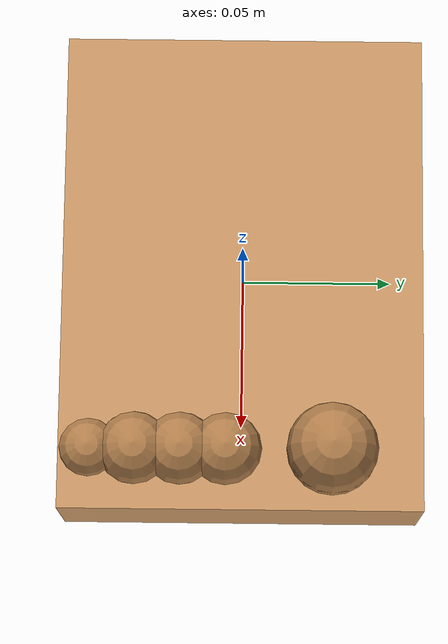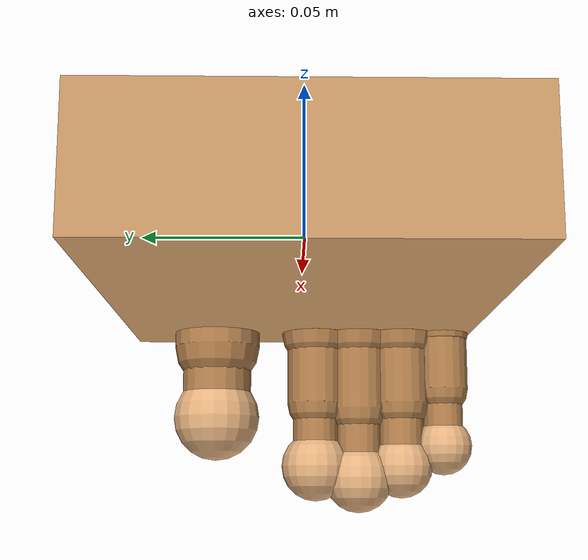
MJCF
<mujoco model="dexterous_hand">
  <compiler angle="radian" meshdir="../meshes"/>

  <option timestep="0.002" gravity="0 0 -9.81" iterations="50" jacobian="dense">
    <flag constraint="enable" contact="enable" energy="enable"/>
    <numeric solver="PGS" tolerance="1e-6" iterations="50"/>
  </option>

  <default>
    <joint armature="0.001" damping="5" frictionloss="0.05" limited="true"/>
    <geom rgba="0.6 0.6 0.6 1" margin="0.001" condim="3" friction="0.8 0.01 0.01"/>
    <actuator kp="1000" kv="100"/>
  </default>

  <asset>
    <texture name="metal" type="2d" builtin="checker" width="256" height="256" rgb1="0.7 0.7 0.7" rgb2="0.9 0.9 0.9"/>
    <material name="metal_mat" texture="metal" texrepeat="2 2"/>
    <texture name="skin" type="2d" builtin="gradient" width="256" height="256" rgb1="0.8 0.6 0.4" rgb2="0.6 0.4 0.3"/>
    <material name="skin_mat" texture="skin"/>
  </asset>

  <worldbody>
    <body name="palm" pos="0 0 0">
      <geom name="palm_geom" type="box" size="0.08 0.06 0.02" rgba="0.8 0.6 0.4 1" material="skin_mat"/>

      <!-- Thumb -->
      <body name="thumb_base" pos="0.06 0.03 0">
        <joint name="thumb_abd" type="hinge" axis="0 0 1" range="-0.8 0.8" stiffness="500"/>
        <geom name="thumb_base_geom" type="capsule" size="0.015 0.025" rgba="0.7 0.5 0.3 1" material="skin_mat"/>

        <body name="thumb_proximal" pos="0 0 -0.025">
          <joint name="thumb_flex1" type="hinge" axis="1 0 0" range="0 1.5" stiffness="500"/>
          <geom name="thumb_proximal_geom" type="capsule" size="0.012 0.025" rgba="0.7 0.5 0.3 1" material="skin_mat"/>

          <body name="thumb_distal" pos="0 0 -0.025">
            <joint name="thumb_flex2" type="hinge" axis="1 0 0" range="0 1.8" stiffness="500"/>
            <geom name="thumb_distal_geom" type="sphere" size="0.015" rgba="0.9 0.7 0.5 1" material="skin_mat"/>
          </body>
        </body>
      </body>

      <!-- Index Finger -->
      <body name="index_base" pos="0.06 -0.005 0">
        <joint name="index_abd" type="hinge" axis="0 0 1" range="-0.5 0.5" stiffness="500"/>
        <geom name="index_base_geom" type="capsule" size="0.012 0.02" rgba="0.7 0.5 0.3 1" material="skin_mat"/>

        <body name="index_proximal" pos="0 0 -0.02">
          <joint name="index_flex1" type="hinge" axis="1 0 0" range="0 1.8" stiffness="500"/>
          <geom name="index_proximal_geom" type="capsule" size="0.01 0.025" rgba="0.7 0.5 0.3 1" material="skin_mat"/>

          <body name="index_middle" pos="0 0 -0.025">
            <joint name="index_flex2" type="hinge" axis="1 0 0" range="0 1.8" stiffness="500"/>
            <geom name="index_middle_geom" type="capsule" size="0.008 0.022" rgba="0.7 0.5 0.3 1" material="skin_mat"/>

            <body name="index_distal" pos="0 0 -0.022">
              <joint name="index_flex3" type="hinge" axis="1 0 0" range="0 1.5" stiffness="500"/>
              <geom name="index_distal_geom" type="sphere" size="0.012" rgba="0.9 0.7 0.5 1" material="skin_mat"/>
            </body>
          </body>
        </body>
      </body>

      <!-- Middle Finger -->
      <body name="middle_base" pos="0.06 -0.02 0">
        <joint name="middle_abd" type="hinge" axis="0 0 1" range="-0.3 0.3" stiffness="500"/>
        <geom name="middle_base_geom" type="capsule" size="0.012 0.02" rgba="0.7 0.5 0.3 1" material="skin_mat"/>

        <body name="middle_proximal" pos="0 0 -0.02">
          <joint name="middle_flex1" type="hinge" axis="1 0 0" range="0 1.8" stiffness="500"/>
          <geom name="middle_proximal_geom" type="capsule" size="0.01 0.027" rgba="0.7 0.5 0.3 1" material="skin_mat"/>

          <body name="middle_middle" pos="0 0 -0.027">
            <joint name="middle_flex2" type="hinge" axis="1 0 0" range="0 1.8" stiffness="500"/>
            <geom name="middle_middle_geom" type="capsule" size="0.008 0.024" rgba="0.7 0.5 0.3 1" material="skin_mat"/>

            <body name="middle_distal" pos="0 0 -0.024">
              <joint name="middle_flex3" type="hinge" axis="1 0 0" range="0 1.5" stiffness="500"/>
              <geom name="middle_distal_geom" type="sphere" size="0.012" rgba="0.9 0.7 0.5 1" material="skin_mat"/>
            </body>
          </body>
        </body>
      </body>

      <!-- Ring Finger -->
      <body name="ring_base" pos="0.06 -0.035 0">
        <joint name="ring_abd" type="hinge" axis="0 0 1" range="-0.3 0.3" stiffness="500"/>
        <geom name="ring_base_geom" type="capsule" size="0.012 0.02" rgba="0.7 0.5 0.3 1" material="skin_mat"/>

        <body name="ring_proximal" pos="0 0 -0.02">
          <joint name="ring_flex1" type="hinge" axis="1 0 0" range="0 1.8" stiffness="500"/>
          <geom name="ring_proximal_geom" type="capsule" size="0.01 0.025" rgba="0.7 0.5 0.3 1" material="skin_mat"/>

          <body name="ring_middle" pos="0 0 -0.025">
            <joint name="ring_flex2" type="hinge" axis="1 0 0" range="0 1.8" stiffness="500"/>
            <geom name="ring_middle_geom" type="capsule" size="0.008 0.022" rgba="0.7 0.5 0.3 1" material="skin_mat"/>

            <body name="ring_distal" pos="0 0 -0.022">
              <joint name="ring_flex3" type="hinge" axis="1 0 0" range="0 1.5" stiffness="500"/>
              <geom name="ring_distal_geom" type="sphere" size="0.011" rgba="0.9 0.7 0.5 1" material="skin_mat"/>
            </body>
          </body>
        </body>
      </body>

      <!-- Pinky Finger -->
      <body name="pinky_base" pos="0.06 -0.05 0">
        <joint name="pinky_abd" type="hinge" axis="0 0 1" range="-0.6 0.2" stiffness="500"/>
        <geom name="pinky_base_geom" type="capsule" size="0.01 0.018" rgba="0.7 0.5 0.3 1" material="skin_mat"/>

        <body name="pinky_proximal" pos="0 0 -0.018">
          <joint name="pinky_flex1" type="hinge" axis="1 0 0" range="0 1.8" stiffness="500"/>
          <geom name="pinky_proximal_geom" type="capsule" size="0.009 0.022" rgba="0.7 0.5 0.3 1" material="skin_mat"/>

          <body name="pinky_middle" pos="0 0 -0.022">
            <joint name="pinky_flex2" type="hinge" axis="1 0 0" range="0 1.8" stiffness="500"/>
            <geom name="pinky_middle_geom" type="capsule" size="0.007 0.02" rgba="0.7 0.5 0.3 1" material="skin_mat"/>

            <body name="pinky_distal" pos="0 0 -0.02">
              <joint name="pinky_flex3" type="hinge" axis="1 0 0" range="0 1.5" stiffness="500"/>
              <geom name="pinky_distal_geom" type="sphere" size="0.01" rgba="0.9 0.7 0.5 1" material="skin_mat"/>
            </body>
          </body>
        </body>
      </body>
    </body>
  </worldbody>

  <actuator>
    <position name="thumb_abd_motor" joint="thumb_abd" kp="1000" kv="100"/>
    <position name="thumb_flex1_motor" joint="thumb_flex1" kp="1000" kv="100"/>
    <position name="thumb_flex2_motor" joint="thumb_flex2" kp="1000" kv="100"/>

    <position name="index_abd_motor" joint="index_abd" kp="1000" kv="100"/>
    <position name="index_flex1_motor" joint="index_flex1" kp="1000" kv="100"/>
    <position name="index_flex2_motor" joint="index_flex2" kp="1000" kv="100"/>
    <position name="index_flex3_motor" joint="index_flex3" kp="1000" kv="100"/>

    <position name="middle_abd_motor" joint="middle_abd" kp="1000" kv="100"/>
    <position name="middle_flex1_motor" joint="middle_flex1" kp="1000" kv="100"/>
    <position name="middle_flex2_motor" joint="middle_flex2" kp="1000" kv="100"/>
    <position name="middle_flex3_motor" joint="middle_flex3" kp="1000" kv="100"/>

    <position name="ring_abd_motor" joint="ring_abd" kp="1000" kv="100"/>
    <position name="ring_flex1_motor" joint="ring_flex1" kp="1000" kv="100"/>
    <position name="ring_flex2_motor" joint="ring_flex2" kp="1000" kv="100"/>
    <position name="ring_flex3_motor" joint="ring_flex3" kp="1000" kv="100"/>

    <position name="pinky_abd_motor" joint="pinky_abd" kp="1000" kv="100"/>
    <position name="pinky_flex1_motor" joint="pinky_flex1" kp="1000" kv="100"/>
    <position name="pinky_flex2_motor" joint="pinky_flex2" kp="1000" kv="100"/>
    <position name="pinky_flex3_motor" joint="pinky_flex3" kp="1000" kv="100"/>
  </actuator>

  <sensor>
    <jointpos name="joint_positions"/>
    <jointvel name="joint_velocities"/>
    <actuatorforce name="joint_torques"/>

    <framepos name="palm_pos" objtype="body" objname="palm"/>
    <framequat name="palm_quat" objtype="body" objname="palm"/>
    <framevel name="palm_vel" objtype="body" objname="palm"/>
    <frameacc name="palm_acc" objtype="body" objname="palm"/>

    <touch name="thumb_touch" objtype="geom" objname="thumb_distal_geom"/>
    <touch name="index_touch" objtype="geom" objname="index_distal_geom"/>
    <touch name="middle_touch" objtype="geom" objname="middle_distal_geom"/>
    <touch name="ring_touch" objtype="geom" objname="ring_distal_geom"/>
    <touch name="pinky_touch" objtype="geom" objname="pinky_distal_geom"/>

    <accelerometer name="palm_imu_acc" objtype="body" objname="palm"/>
    <gyro name="palm_imu_gyro" objtype="body" objname="palm"/>

    <contactforce name="contact_forces"/>
    <contactnum name="contact_count"/>

    <tendonpos name="tendon_positions"/>
    <tendonvel name="tendon_velocities"/>

    <energy name="system_energy"/>
  </sensor>

  <tendon>
    <spatial name="thumb_tendon" limited="true" range="0 0.1">
      <site site="thumb_tendon_site"/>
      <joint joint="thumb_flex1"/>
      <joint joint="thumb_flex2"/>
    </spatial>
  </tendon>

  <equality>
    <tendon name="thumb_tendon_eq" tendon="thumb_tendon"/>
  </equality>
</mujoco>
